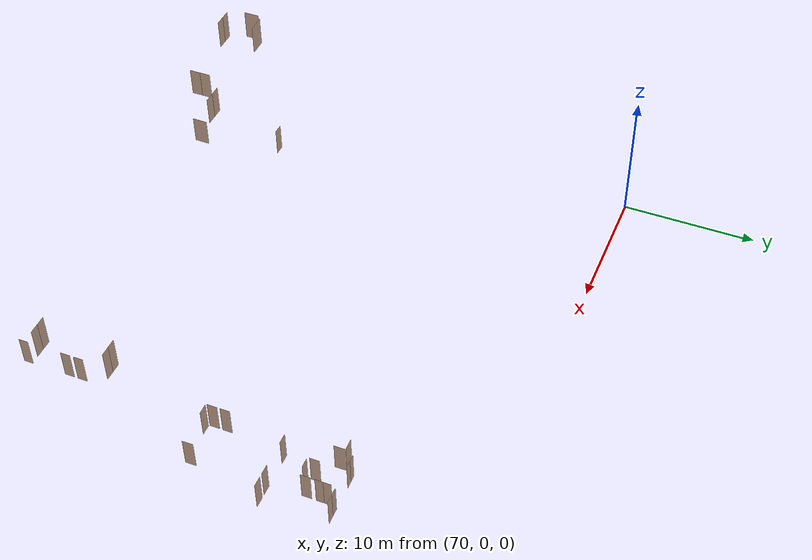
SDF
<sdf version="1.7">
 <world name="sim_world">
  <model name="p54">
   <pose>73.95981970904572 -27.499940742496534 0.0 0 0 3.118508219306576</pose>
   <link name="right">
    <pose>0 0 1.11 0 0 0</pose>
    <visual name="right_visual">
     <geometry><box><size>0.7409111580958373 0.03 2.2</size></box></geometry>
     <material>
      <ambient>0.5 0.25 0 0.6</ambient>
      <diffuse>0.5 0.25 0 0.6</diffuse>
      <pbr><metal><metalness>0.0</metalness></metal></pbr>
     </material>
    </visual>
    <collision name="right_collision">
     <geometry><box><size>0.7409111580958373 0.03 2.2</size></box></geometry>
     <surface><contact><collide_bitmask>0x02</collide_bitmask></contact></surface>
    </collision>
    <inertial>
     <mass>50.0</mass>
     <inertia><ixx>20.17041666666667</ixx><iyy>22.453955600795485</iyy><izz>2.291038934128812</izz></inertia>
    </inertial>
   </link>
   <joint name="right_joint" type="revolute">
    <parent>world</parent>
    <child>right</child>
    <axis><xyz>0 0 1</xyz><limit><lower>0</lower><upper>1.57</upper></limit></axis>
    <pose>0.37545557904791865 0 0 0 0 0</pose>
   </joint>
   <plugin name="register_component" filename="libregister_component.so">
    <component name="Door">
     <v_max_door>0.5</v_max_door>
     <a_max_door>0.3</a_max_door>
     <a_nom_door>0.15</a_nom_door>
     <dx_min_door>0.01</dx_min_door>
     <f_max_door>500.0</f_max_door>
     <ros_interface>true</ros_interface>
     <door name="p54" type="SwingDoor" left_joint_name="empty_joint" right_joint_name="right_joint"/>
    </component>
   </plugin>
  </model>
  <model name="p55">
   <pose>75.33883440490658 -33.7237007792362 0.0 0 0 -1.5903417223014613</pose>
   <link name="right">
    <pose>0 0 1.11 0 0 0</pose>
    <visual name="right_visual">
     <geometry><box><size>1.1747467513981948 0.03 2.2</size></box></geometry>
     <material>
      <ambient>0.5 0.25 0 0.6</ambient>
      <diffuse>0.5 0.25 0 0.6</diffuse>
      <pbr><metal><metalness>0.0</metalness></metal></pbr>
     </material>
    </visual>
    <collision name="right_collision">
     <geometry><box><size>1.1747467513981948 0.03 2.2</size></box></geometry>
     <surface><contact><collide_bitmask>0x02</collide_bitmask></contact></surface>
    </collision>
    <inertial>
     <mass>50.0</mass>
     <inertia><ixx>20.17041666666667</ixx><iyy>25.91679137466922</iyy><izz>5.753874708002551</izz></inertia>
    </inertial>
   </link>
   <joint name="right_joint" type="revolute">
    <parent>world</parent>
    <child>right</child>
    <axis><xyz>0 0 -1</xyz><limit><lower>0</lower><upper>1.57</upper></limit></axis>
    <pose>0.5923733756990974 0 0 0 0 0</pose>
   </joint>
   <plugin name="register_component" filename="libregister_component.so">
    <component name="Door">
     <v_max_door>0.5</v_max_door>
     <a_max_door>0.3</a_max_door>
     <a_nom_door>0.15</a_nom_door>
     <dx_min_door>0.01</dx_min_door>
     <f_max_door>500.0</f_max_door>
     <ros_interface>true</ros_interface>
     <door name="p55" type="SwingDoor" left_joint_name="empty_joint" right_joint_name="right_joint"/>
    </component>
   </plugin>
  </model>
  <model name="p100">
   <pose>100.49508903439906 -9.745955675387403 0.0 0 0 0.011124171743095226</pose>
   <link name="right">
    <pose>0 0 1.11 0 0 0</pose>
    <visual name="right_visual">
     <geometry><box><size>0.7570914016547481 0.03 2.2</size></box></geometry>
     <material>
      <ambient>0.5 0.25 0 0.6</ambient>
      <diffuse>0.5 0.25 0 0.6</diffuse>
      <pbr><metal><metalness>0.0</metalness></metal></pbr>
     </material>
    </visual>
    <collision name="right_collision">
     <geometry><box><size>0.7570914016547481 0.03 2.2</size></box></geometry>
     <surface><contact><collide_bitmask>0x02</collide_bitmask></contact></surface>
    </collision>
    <inertial>
     <mass>50.0</mass>
     <inertia><ixx>20.17041666666667</ixx><iyy>22.554947460248133</iyy><izz>2.3920307935814633</izz></inertia>
    </inertial>
   </link>
   <joint name="right_joint" type="revolute">
    <parent>world</parent>
    <child>right</child>
    <axis><xyz>0 0 -1</xyz><limit><lower>0</lower><upper>1.57</upper></limit></axis>
    <pose>0.38354570082737405 0 0 0 0 0</pose>
   </joint>
   <plugin name="register_component" filename="libregister_component.so">
    <component name="Door">
     <v_max_door>0.5</v_max_door>
     <a_max_door>0.3</a_max_door>
     <a_nom_door>0.15</a_nom_door>
     <dx_min_door>0.01</dx_min_door>
     <f_max_door>500.0</f_max_door>
     <ros_interface>true</ros_interface>
     <door name="p100" type="SwingDoor" left_joint_name="empty_joint" right_joint_name="right_joint"/>
    </component>
   </plugin>
  </model>
  <model name="p101">
   <pose>100.94895336434482 -10.160798939290693 0.0 0 0 1.5789192547537345</pose>
   <link name="right">
    <pose>0 0 1.11 0 0 0</pose>
    <visual name="right_visual">
     <geometry><box><size>0.8189138980404819 0.03 2.2</size></box></geometry>
     <material>
      <ambient>0.5 0.25 0 0.6</ambient>
      <diffuse>0.5 0.25 0 0.6</diffuse>
      <pbr><metal><metalness>0.0</metalness></metal></pbr>
     </material>
    </visual>
    <collision name="right_collision">
     <geometry><box><size>0.8189138980404819 0.03 2.2</size></box></geometry>
     <surface><contact><collide_bitmask>0x02</collide_bitmask></contact></surface>
    </collision>
    <inertial>
     <mass>50.0</mass>
     <inertia><ixx>20.17041666666667</ixx><iyy>22.96091655168274</iyy><izz>2.79799988501607</izz></inertia>
    </inertial>
   </link>
   <joint name="right_joint" type="revolute">
    <parent>world</parent>
    <child>right</child>
    <axis><xyz>0 0 -1</xyz><limit><lower>0</lower><upper>1.57</upper></limit></axis>
    <pose>0.41445694902024094 0 0 0 0 0</pose>
   </joint>
   <plugin name="register_component" filename="libregister_component.so">
    <component name="Door">
     <v_max_door>0.5</v_max_door>
     <a_max_door>0.3</a_max_door>
     <a_nom_door>0.15</a_nom_door>
     <dx_min_door>0.01</dx_min_door>
     <f_max_door>500.0</f_max_door>
     <ros_interface>true</ros_interface>
     <door name="p101" type="SwingDoor" left_joint_name="empty_joint" right_joint_name="right_joint"/>
    </component>
   </plugin>
  </model>
  <model name="p102">
   <pose>101.70223104500613 -9.121474178542865 0.0 0 0 0.0168038520198686</pose>
   <link name="right">
    <pose>0.2535838443429033 0 1.11 0 0 0</pose>
    <visual name="right_visual">
     <geometry><box><size>0.49716768868580663 0.03 2.2</size></box></geometry>
     <material>
      <ambient>0.5 0.25 0 0.6</ambient>
      <diffuse>0.5 0.25 0 0.6</diffuse>
      <pbr><metal><metalness>0.0</metalness></metal></pbr>
     </material>
    </visual>
    <collision name="right_collision">
     <geometry><box><size>0.49716768868580663 0.03 2.2</size></box></geometry>
     <surface><contact><collide_bitmask>0x02</collide_bitmask></contact></surface>
    </collision>
    <inertial>
     <mass>50.0</mass>
     <inertia><ixx>20.17041666666667</ixx><iyy>21.196565461138285</iyy><izz>1.0336487944716133</izz></inertia>
    </inertial>
   </link>
   <joint name="right_joint" type="revolute">
    <parent>world</parent>
    <child>right</child>
    <axis><xyz>0 0 -1</xyz><limit><lower>0</lower><upper>1.57</upper></limit></axis>
    <pose>0.2535838443429033 0 0 0 0 0</pose>
   </joint>
   <link name="left">
    <pose>-0.2535838443429033 0 1.11 0 0 0</pose>
    <visual name="left_visual">
     <geometry><box><size>0.49716768868580663 0.03 2.2</size></box></geometry>
     <material>
      <ambient>0.5 0.25 0 0.6</ambient>
      <diffuse>0.5 0.25 0 0.6</diffuse>
      <pbr><metal><metalness>0.0</metalness></metal></pbr>
     </material>
    </visual>
    <collision name="left_collision">
     <geometry><box><size>0.49716768868580663 0.03 2.2</size></box></geometry>
     <surface><contact><collide_bitmask>0x02</collide_bitmask></contact></surface>
    </collision>
    <inertial>
     <mass>50.0</mass>
     <inertia><ixx>20.17041666666667</ixx><iyy>21.196565461138285</iyy><izz>1.0336487944716133</izz></inertia>
    </inertial>
   </link>
   <joint name="left_joint" type="revolute">
    <parent>world</parent>
    <child>left</child>
    <axis><xyz>0 0 -1</xyz><limit><lower>-1.57</lower><upper>0</upper></limit></axis>
    <pose>-0.2535838443429033 0 0 0 0 0</pose>
   </joint>
   <plugin name="register_component" filename="libregister_component.so">
    <component name="Door">
     <v_max_door>0.5</v_max_door>
     <a_max_door>0.3</a_max_door>
     <a_nom_door>0.15</a_nom_door>
     <dx_min_door>0.01</dx_min_door>
     <f_max_door>500.0</f_max_door>
     <ros_interface>true</ros_interface>
     <door name="p102" type="DoubleSwingDoor" left_joint_name="left_joint" right_joint_name="right_joint"/>
    </component>
   </plugin>
  </model>
  <model name="p103">
   <pose>103.82634588604789 -10.032236081893878 0.0 0 0 1.5759541186434451</pose>
   <link name="right">
    <pose>0.2865064330751496 0 1.11 0 0 0</pose>
    <visual name="right_visual">
     <geometry><box><size>0.5630128661502992 0.03 2.2</size></box></geometry>
     <material>
      <ambient>0.5 0.25 0 0.6</ambient>
      <diffuse>0.5 0.25 0 0.6</diffuse>
      <pbr><metal><metalness>0.0</metalness></metal></pbr>
     </material>
    </visual>
    <collision name="right_collision">
     <geometry><box><size>0.5630128661502992 0.03 2.2</size></box></geometry>
     <surface><contact><collide_bitmask>0x02</collide_bitmask></contact></surface>
    </collision>
    <inertial>
     <mass>50.0</mass>
     <inertia><ixx>20.17041666666667</ixx><iyy>21.487431197711565</iyy><izz>1.324514531044895</izz></inertia>
    </inertial>
   </link>
   <joint name="right_joint" type="revolute">
    <parent>world</parent>
    <child>right</child>
    <axis><xyz>0 0 -1</xyz><limit><lower>0</lower><upper>1.57</upper></limit></axis>
    <pose>0.2865064330751496 0 0 0 0 0</pose>
   </joint>
   <link name="left">
    <pose>-0.2865064330751496 0 1.11 0 0 0</pose>
    <visual name="left_visual">
     <geometry><box><size>0.5630128661502992 0.03 2.2</size></box></geometry>
     <material>
      <ambient>0.5 0.25 0 0.6</ambient>
      <diffuse>0.5 0.25 0 0.6</diffuse>
      <pbr><metal><metalness>0.0</metalness></metal></pbr>
     </material>
    </visual>
    <collision name="left_collision">
     <geometry><box><size>0.5630128661502992 0.03 2.2</size></box></geometry>
     <surface><contact><collide_bitmask>0x02</collide_bitmask></contact></surface>
    </collision>
    <inertial>
     <mass>50.0</mass>
     <inertia><ixx>20.17041666666667</ixx><iyy>21.487431197711565</iyy><izz>1.324514531044895</izz></inertia>
    </inertial>
   </link>
   <joint name="left_joint" type="revolute">
    <parent>world</parent>
    <child>left</child>
    <axis><xyz>0 0 -1</xyz><limit><lower>-1.57</lower><upper>0</upper></limit></axis>
    <pose>-0.2865064330751496 0 0 0 0 0</pose>
   </joint>
   <plugin name="register_component" filename="libregister_component.so">
    <component name="Door">
     <v_max_door>0.5</v_max_door>
     <a_max_door>0.3</a_max_door>
     <a_nom_door>0.15</a_nom_door>
     <dx_min_door>0.01</dx_min_door>
     <f_max_door>500.0</f_max_door>
     <ros_interface>true</ros_interface>
     <door name="p103" type="DoubleSwingDoor" left_joint_name="left_joint" right_joint_name="right_joint"/>
    </component>
   </plugin>
  </model>
  <model name="p104">
   <pose>104.55446875648137 -9.109152321412704 0.0 0 0 0.006483198581147961</pose>
   <link name="right">
    <pose>0.2930585869539485 0 1.11 0 0 0</pose>
    <visual name="right_visual">
     <geometry><box><size>0.576117173907897 0.03 2.2</size></box></geometry>
     <material>
      <ambient>0.5 0.25 0 0.6</ambient>
      <diffuse>0.5 0.25 0 0.6</diffuse>
      <pbr><metal><metalness>0.0</metalness></metal></pbr>
     </material>
    </visual>
    <collision name="right_collision">
     <geometry><box><size>0.576117173907897 0.03 2.2</size></box></geometry>
     <surface><contact><collide_bitmask>0x02</collide_bitmask></contact></surface>
    </collision>
    <inertial>
     <mass>50.0</mass>
     <inertia><ixx>20.17041666666667</ixx><iyy>21.549629158631763</iyy><izz>1.3867124919650917</izz></inertia>
    </inertial>
   </link>
   <joint name="right_joint" type="revolute">
    <parent>world</parent>
    <child>right</child>
    <axis><xyz>0 0 -1</xyz><limit><lower>0</lower><upper>1.57</upper></limit></axis>
    <pose>0.2930585869539485 0 0 0 0 0</pose>
   </joint>
   <link name="left">
    <pose>-0.2930585869539485 0 1.11 0 0 0</pose>
    <visual name="left_visual">
     <geometry><box><size>0.576117173907897 0.03 2.2</size></box></geometry>
     <material>
      <ambient>0.5 0.25 0 0.6</ambient>
      <diffuse>0.5 0.25 0 0.6</diffuse>
      <pbr><metal><metalness>0.0</metalness></metal></pbr>
     </material>
    </visual>
    <collision name="left_collision">
     <geometry><box><size>0.576117173907897 0.03 2.2</size></box></geometry>
     <surface><contact><collide_bitmask>0x02</collide_bitmask></contact></surface>
    </collision>
    <inertial>
     <mass>50.0</mass>
     <inertia><ixx>20.17041666666667</ixx><iyy>21.549629158631763</iyy><izz>1.3867124919650917</izz></inertia>
    </inertial>
   </link>
   <joint name="left_joint" type="revolute">
    <parent>world</parent>
    <child>left</child>
    <axis><xyz>0 0 -1</xyz><limit><lower>-1.57</lower><upper>0</upper></limit></axis>
    <pose>-0.2930585869539485 0 0 0 0 0</pose>
   </joint>
   <plugin name="register_component" filename="libregister_component.so">
    <component name="Door">
     <v_max_door>0.5</v_max_door>
     <a_max_door>0.3</a_max_door>
     <a_nom_door>0.15</a_nom_door>
     <dx_min_door>0.01</dx_min_door>
     <f_max_door>500.0</f_max_door>
     <ros_interface>true</ros_interface>
     <door name="p104" type="DoubleSwingDoor" left_joint_name="left_joint" right_joint_name="right_joint"/>
    </component>
   </plugin>
  </model>
  <model name="p106">
   <pose>102.42714289946971 -11.25109996740838 0.0 0 0 1.5617335996564203</pose>
   <link name="right">
    <pose>0 0 1.11 0 0 0</pose>
    <visual name="right_visual">
     <geometry><box><size>0.7059859670947204 0.03 2.2</size></box></geometry>
     <material>
      <ambient>0.5 0.25 0 0.6</ambient>
      <diffuse>0.5 0.25 0 0.6</diffuse>
      <pbr><metal><metalness>0.0</metalness></metal></pbr>
     </material>
    </visual>
    <collision name="right_collision">
     <geometry><box><size>0.7059859670947204 0.03 2.2</size></box></geometry>
     <surface><contact><collide_bitmask>0x02</collide_bitmask></contact></surface>
    </collision>
    <inertial>
     <mass>50.0</mass>
     <inertia><ixx>20.17041666666667</ixx><iyy>22.243400773894454</iyy><izz>2.080484107227782</izz></inertia>
    </inertial>
   </link>
   <joint name="right_joint" type="revolute">
    <parent>world</parent>
    <child>right</child>
    <axis><xyz>0 0 -1</xyz><limit><lower>0</lower><upper>1.57</upper></limit></axis>
    <pose>0.3579929835473602 0 0 0 0 0</pose>
   </joint>
   <plugin name="register_component" filename="libregister_component.so">
    <component name="Door">
     <v_max_door>0.5</v_max_door>
     <a_max_door>0.3</a_max_door>
     <a_nom_door>0.15</a_nom_door>
     <dx_min_door>0.01</dx_min_door>
     <f_max_door>500.0</f_max_door>
     <ros_interface>true</ros_interface>
     <door name="p106" type="SwingDoor" left_joint_name="empty_joint" right_joint_name="right_joint"/>
    </component>
   </plugin>
  </model>
  <model name="p107">
   <pose>103.82629033213837 -11.261477437705558 0.0 0 0 1.5624175846166573</pose>
   <link name="right">
    <pose>0 0 1.11 0 0 0</pose>
    <visual name="right_visual">
     <geometry><box><size>0.7087372668855829 0.03 2.2</size></box></geometry>
     <material>
      <ambient>0.5 0.25 0 0.6</ambient>
      <diffuse>0.5 0.25 0 0.6</diffuse>
      <pbr><metal><metalness>0.0</metalness></metal></pbr>
     </material>
    </visual>
    <collision name="right_collision">
     <geometry><box><size>0.7087372668855829 0.03 2.2</size></box></geometry>
     <surface><contact><collide_bitmask>0x02</collide_bitmask></contact></surface>
    </collision>
    <inertial>
     <mass>50.0</mass>
     <inertia><ixx>20.17041666666667</ixx><iyy>22.259618806135197</iyy><izz>2.0967021394685252</izz></inertia>
    </inertial>
   </link>
   <joint name="right_joint" type="revolute">
    <parent>world</parent>
    <child>right</child>
    <axis><xyz>0 0 -1</xyz><limit><lower>0</lower><upper>1.57</upper></limit></axis>
    <pose>0.35936863344279146 0 0 0 0 0</pose>
   </joint>
   <plugin name="register_component" filename="libregister_component.so">
    <component name="Door">
     <v_max_door>0.5</v_max_door>
     <a_max_door>0.3</a_max_door>
     <a_nom_door>0.15</a_nom_door>
     <dx_min_door>0.01</dx_min_door>
     <f_max_door>500.0</f_max_door>
     <ros_interface>true</ros_interface>
     <door name="p107" type="SwingDoor" left_joint_name="empty_joint" right_joint_name="right_joint"/>
    </component>
   </plugin>
  </model>
  <model name="p108">
   <pose>101.66397662291496 -13.890255103552496 0.0 0 0 0.01372252654388742</pose>
   <link name="right">
    <pose>0 0 1.11 0 0 0</pose>
    <visual name="right_visual">
     <geometry><box><size>0.7154912571668173 0.03 2.2</size></box></geometry>
     <material>
      <ambient>0.5 0.25 0 0.6</ambient>
      <diffuse>0.5 0.25 0 0.6</diffuse>
      <pbr><metal><metalness>0.0</metalness></metal></pbr>
     </material>
    </visual>
    <collision name="right_collision">
     <geometry><box><size>0.7154912571668173 0.03 2.2</size></box></geometry>
     <surface><contact><collide_bitmask>0x02</collide_bitmask></contact></surface>
    </collision>
    <inertial>
     <mass>50.0</mass>
     <inertia><ixx>20.17041666666667</ixx><iyy>22.29969891284231</iyy><izz>2.136782246175636</izz></inertia>
    </inertial>
   </link>
   <joint name="right_joint" type="revolute">
    <parent>world</parent>
    <child>right</child>
    <axis><xyz>0 0 -1</xyz><limit><lower>0</lower><upper>1.57</upper></limit></axis>
    <pose>0.36274562858340864 0 0 0 0 0</pose>
   </joint>
   <plugin name="register_component" filename="libregister_component.so">
    <component name="Door">
     <v_max_door>0.5</v_max_door>
     <a_max_door>0.3</a_max_door>
     <a_nom_door>0.15</a_nom_door>
     <dx_min_door>0.01</dx_min_door>
     <f_max_door>500.0</f_max_door>
     <ros_interface>true</ros_interface>
     <door name="p108" type="SwingDoor" left_joint_name="empty_joint" right_joint_name="right_joint"/>
    </component>
   </plugin>
  </model>
  <model name="p109">
   <pose>102.90293991289154 -11.747607478296947 0.0 0 0 -3.1355767052412236</pose>
   <link name="right">
    <pose>0 0 1.11 0 0 0</pose>
    <visual name="right_visual">
     <geometry><box><size>0.6696588279365855 0.03 2.2</size></box></geometry>
     <material>
      <ambient>0.5 0.25 0 0.6</ambient>
      <diffuse>0.5 0.25 0 0.6</diffuse>
      <pbr><metal><metalness>0.0</metalness></metal></pbr>
     </material>
    </visual>
    <collision name="right_collision">
     <geometry><box><size>0.6696588279365855 0.03 2.2</size></box></geometry>
     <surface><contact><collide_bitmask>0x02</collide_bitmask></contact></surface>
    </collision>
    <inertial>
     <mass>50.0</mass>
     <inertia><ixx>20.17041666666667</ixx><iyy>22.03517894097251</iyy><izz>1.8722622743058392</izz></inertia>
    </inertial>
   </link>
   <joint name="right_joint" type="revolute">
    <parent>world</parent>
    <child>right</child>
    <axis><xyz>0 0 -1</xyz><limit><lower>0</lower><upper>1.57</upper></limit></axis>
    <pose>0.33982941396829275 0 0 0 0 0</pose>
   </joint>
   <plugin name="register_component" filename="libregister_component.so">
    <component name="Door">
     <v_max_door>0.5</v_max_door>
     <a_max_door>0.3</a_max_door>
     <a_nom_door>0.15</a_nom_door>
     <dx_min_door>0.01</dx_min_door>
     <f_max_door>500.0</f_max_door>
     <ros_interface>true</ros_interface>
     <door name="p109" type="SwingDoor" left_joint_name="empty_joint" right_joint_name="right_joint"/>
    </component>
   </plugin>
  </model>
  <model name="p110">
   <pose>104.32402002903626 -13.885221919350547 0.0 0 0 -3.141440724086253</pose>
   <link name="right">
    <pose>0 0 1.11 0 0 0</pose>
    <visual name="right_visual">
     <geometry><box><size>0.7213116732798441 0.03 2.2</size></box></geometry>
     <material>
      <ambient>0.5 0.25 0 0.6</ambient>
      <diffuse>0.5 0.25 0 0.6</diffuse>
      <pbr><metal><metalness>0.0</metalness></metal></pbr>
     </material>
    </visual>
    <collision name="right_collision">
     <geometry><box><size>0.7213116732798441 0.03 2.2</size></box></geometry>
     <surface><contact><collide_bitmask>0x02</collide_bitmask></contact></surface>
    </collision>
    <inertial>
     <mass>50.0</mass>
     <inertia><ixx>20.17041666666667</ixx><iyy>22.33454387504071</iyy><izz>2.171627208374036</izz></inertia>
    </inertial>
   </link>
   <joint name="right_joint" type="revolute">
    <parent>world</parent>
    <child>right</child>
    <axis><xyz>0 0 1</xyz><limit><lower>0</lower><upper>1.57</upper></limit></axis>
    <pose>0.36565583663992207 0 0 0 0 0</pose>
   </joint>
   <plugin name="register_component" filename="libregister_component.so">
    <component name="Door">
     <v_max_door>0.5</v_max_door>
     <a_max_door>0.3</a_max_door>
     <a_nom_door>0.15</a_nom_door>
     <dx_min_door>0.01</dx_min_door>
     <f_max_door>500.0</f_max_door>
     <ros_interface>true</ros_interface>
     <door name="p110" type="SwingDoor" left_joint_name="empty_joint" right_joint_name="right_joint"/>
    </component>
   </plugin>
  </model>
  <model name="p111">
   <pose>105.32383484933786 -13.885999674083742 0.0 0 0 3.1393514429029556</pose>
   <link name="right">
    <pose>0 0 1.11 0 0 0</pose>
    <visual name="right_visual">
     <geometry><box><size>0.733624278808832 0.03 2.2</size></box></geometry>
     <material>
      <ambient>0.5 0.25 0 0.6</ambient>
      <diffuse>0.5 0.25 0 0.6</diffuse>
      <pbr><metal><metalness>0.0</metalness></metal></pbr>
     </material>
    </visual>
    <collision name="right_collision">
     <geometry><box><size>0.733624278808832 0.03 2.2</size></box></geometry>
     <surface><contact><collide_bitmask>0x02</collide_bitmask></contact></surface>
    </collision>
    <inertial>
     <mass>50.0</mass>
     <inertia><ixx>20.17041666666667</ixx><iyy>22.409185760240753</iyy><izz>2.2462690935740786</izz></inertia>
    </inertial>
   </link>
   <joint name="right_joint" type="revolute">
    <parent>world</parent>
    <child>right</child>
    <axis><xyz>0 0 -1</xyz><limit><lower>0</lower><upper>1.57</upper></limit></axis>
    <pose>0.371812139404416 0 0 0 0 0</pose>
   </joint>
   <plugin name="register_component" filename="libregister_component.so">
    <component name="Door">
     <v_max_door>0.5</v_max_door>
     <a_max_door>0.3</a_max_door>
     <a_nom_door>0.15</a_nom_door>
     <dx_min_door>0.01</dx_min_door>
     <f_max_door>500.0</f_max_door>
     <ros_interface>true</ros_interface>
     <door name="p111" type="SwingDoor" left_joint_name="empty_joint" right_joint_name="right_joint"/>
    </component>
   </plugin>
  </model>
  <model name="p122">
   <pose>100.95231993126136 -18.41004340612131 0.0 0 0 -1.5707963267948966</pose>
   <link name="right">
    <pose>0 0 1.11 0 0 0</pose>
    <visual name="right_visual">
     <geometry><box><size>0.7147118603893234 0.03 2.2</size></box></geometry>
     <material>
      <ambient>0.5 0.25 0 0.6</ambient>
      <diffuse>0.5 0.25 0 0.6</diffuse>
      <pbr><metal><metalness>0.0</metalness></metal></pbr>
     </material>
    </visual>
    <collision name="right_collision">
     <geometry><box><size>0.7147118603893234 0.03 2.2</size></box></geometry>
     <surface><contact><collide_bitmask>0x02</collide_bitmask></contact></surface>
    </collision>
    <inertial>
     <mass>50.0</mass>
     <inertia><ixx>20.17041666666667</ixx><iyy>22.295054347421537</iyy><izz>2.1321376807548655</izz></inertia>
    </inertial>
   </link>
   <joint name="right_joint" type="revolute">
    <parent>world</parent>
    <child>right</child>
    <axis><xyz>0 0 1</xyz><limit><lower>0</lower><upper>1.57</upper></limit></axis>
    <pose>0.3623559301946617 0 0 0 0 0</pose>
   </joint>
   <plugin name="register_component" filename="libregister_component.so">
    <component name="Door">
     <v_max_door>0.5</v_max_door>
     <a_max_door>0.3</a_max_door>
     <a_nom_door>0.15</a_nom_door>
     <dx_min_door>0.01</dx_min_door>
     <f_max_door>500.0</f_max_door>
     <ros_interface>true</ros_interface>
     <door name="p122" type="SwingDoor" left_joint_name="empty_joint" right_joint_name="right_joint"/>
    </component>
   </plugin>
  </model>
  <model name="p123">
   <pose>100.95231993126136 -19.353482119048337 0.0 0 0 1.5707963267948966</pose>
   <link name="right">
    <pose>0 0 1.11 0 0 0</pose>
    <visual name="right_visual">
     <geometry><box><size>0.7271114929928026 0.03 2.2</size></box></geometry>
     <material>
      <ambient>0.5 0.25 0 0.6</ambient>
      <diffuse>0.5 0.25 0 0.6</diffuse>
      <pbr><metal><metalness>0.0</metalness></metal></pbr>
     </material>
    </visual>
    <collision name="right_collision">
     <geometry><box><size>0.7271114929928026 0.03 2.2</size></box></geometry>
     <surface><contact><collide_bitmask>0x02</collide_bitmask></contact></surface>
    </collision>
    <inertial>
     <mass>50.0</mass>
     <inertia><ixx>20.17041666666667</ixx><iyy>22.3695463468426</iyy><izz>2.206629680175927</izz></inertia>
    </inertial>
   </link>
   <joint name="right_joint" type="revolute">
    <parent>world</parent>
    <child>right</child>
    <axis><xyz>0 0 -1</xyz><limit><lower>0</lower><upper>1.57</upper></limit></axis>
    <pose>0.3685557464964013 0 0 0 0 0</pose>
   </joint>
   <plugin name="register_component" filename="libregister_component.so">
    <component name="Door">
     <v_max_door>0.5</v_max_door>
     <a_max_door>0.3</a_max_door>
     <a_nom_door>0.15</a_nom_door>
     <dx_min_door>0.01</dx_min_door>
     <f_max_door>500.0</f_max_door>
     <ros_interface>true</ros_interface>
     <door name="p123" type="SwingDoor" left_joint_name="empty_joint" right_joint_name="right_joint"/>
    </component>
   </plugin>
  </model>
  <model name="p124">
   <pose>104.25825531095383 -19.398491896536413 0.0 0 0 1.5816312061780085</pose>
   <link name="right">
    <pose>0 0 1.11 0 0 0</pose>
    <visual name="right_visual">
     <geometry><box><size>0.7796229534240273 0.03 2.2</size></box></geometry>
     <material>
      <ambient>0.5 0.25 0 0.6</ambient>
      <diffuse>0.5 0.25 0 0.6</diffuse>
      <pbr><metal><metalness>0.0</metalness></metal></pbr>
     </material>
    </visual>
    <collision name="right_collision">
     <geometry><box><size>0.7796229534240273 0.03 2.2</size></box></geometry>
     <surface><contact><collide_bitmask>0x02</collide_bitmask></contact></surface>
    </collision>
    <inertial>
     <mass>50.0</mass>
     <inertia><ixx>20.17041666666667</ixx><iyy>22.69921645627335</iyy><izz>2.5362997896066797</izz></inertia>
    </inertial>
   </link>
   <joint name="right_joint" type="revolute">
    <parent>world</parent>
    <child>right</child>
    <axis><xyz>0 0 1</xyz><limit><lower>0</lower><upper>1.57</upper></limit></axis>
    <pose>0.39481147671201366 0 0 0 0 0</pose>
   </joint>
   <plugin name="register_component" filename="libregister_component.so">
    <component name="Door">
     <v_max_door>0.5</v_max_door>
     <a_max_door>0.3</a_max_door>
     <a_nom_door>0.15</a_nom_door>
     <dx_min_door>0.01</dx_min_door>
     <f_max_door>500.0</f_max_door>
     <ros_interface>true</ros_interface>
     <door name="p124" type="SwingDoor" left_joint_name="empty_joint" right_joint_name="right_joint"/>
    </component>
   </plugin>
  </model>
  <model name="p125">
   <pose>101.40870640869906 -19.793280199105226 0.0 0 0 3.141592653589793</pose>
   <link name="right">
    <pose>0 0 1.11 0 0 0</pose>
    <visual name="right_visual">
     <geometry><box><size>0.7264670676424367 0.03 2.2</size></box></geometry>
     <material>
      <ambient>0.5 0.25 0 0.6</ambient>
      <diffuse>0.5 0.25 0 0.6</diffuse>
      <pbr><metal><metalness>0.0</metalness></metal></pbr>
     </material>
    </visual>
    <collision name="right_collision">
     <geometry><box><size>0.7264670676424367 0.03 2.2</size></box></geometry>
     <surface><contact><collide_bitmask>0x02</collide_bitmask></contact></surface>
    </collision>
    <inertial>
     <mass>50.0</mass>
     <inertia><ixx>20.17041666666667</ixx><iyy>22.365643334870843</iyy><izz>2.20272666820417</izz></inertia>
    </inertial>
   </link>
   <joint name="right_joint" type="revolute">
    <parent>world</parent>
    <child>right</child>
    <axis><xyz>0 0 -1</xyz><limit><lower>0</lower><upper>1.57</upper></limit></axis>
    <pose>0.3682335338212184 0 0 0 0 0</pose>
   </joint>
   <plugin name="register_component" filename="libregister_component.so">
    <component name="Door">
     <v_max_door>0.5</v_max_door>
     <a_max_door>0.3</a_max_door>
     <a_nom_door>0.15</a_nom_door>
     <dx_min_door>0.01</dx_min_door>
     <f_max_door>500.0</f_max_door>
     <ros_interface>true</ros_interface>
     <door name="p125" type="SwingDoor" left_joint_name="empty_joint" right_joint_name="right_joint"/>
    </component>
   </plugin>
  </model>
  <model name="p131">
   <pose>100.6576064412907 -29.693164646973443 0.0 0 0 -1.5688829476076613</pose>
   <link name="right">
    <pose>0 0 1.11 0 0 0</pose>
    <visual name="right_visual">
     <geometry><box><size>0.721668549186603 0.03 2.2</size></box></geometry>
     <material>
      <ambient>0.5 0.25 0 0.6</ambient>
      <diffuse>0.5 0.25 0 0.6</diffuse>
      <pbr><metal><metalness>0.0</metalness></metal></pbr>
     </material>
    </visual>
    <collision name="right_collision">
     <geometry><box><size>0.721668549186603 0.03 2.2</size></box></geometry>
     <surface><contact><collide_bitmask>0x02</collide_bitmask></contact></surface>
    </collision>
    <inertial>
     <mass>50.0</mass>
     <inertia><ixx>20.17041666666667</ixx><iyy>22.336689562021242</iyy><izz>2.1737728953545683</izz></inertia>
    </inertial>
   </link>
   <joint name="right_joint" type="revolute">
    <parent>world</parent>
    <child>right</child>
    <axis><xyz>0 0 1</xyz><limit><lower>0</lower><upper>1.57</upper></limit></axis>
    <pose>0.3658342745933015 0 0 0 0 0</pose>
   </joint>
   <plugin name="register_component" filename="libregister_component.so">
    <component name="Door">
     <v_max_door>0.5</v_max_door>
     <a_max_door>0.3</a_max_door>
     <a_nom_door>0.15</a_nom_door>
     <dx_min_door>0.01</dx_min_door>
     <f_max_door>500.0</f_max_door>
     <ros_interface>true</ros_interface>
     <door name="p131" type="SwingDoor" left_joint_name="empty_joint" right_joint_name="right_joint"/>
    </component>
   </plugin>
  </model>
  <model name="p132">
   <pose>100.65830642055057 -30.69901262184826 0.0 0 0 1.5707963267948966</pose>
   <link name="right">
    <pose>0 0 1.11 0 0 0</pose>
    <visual name="right_visual">
     <geometry><box><size>0.7329779858374559 0.03 2.2</size></box></geometry>
     <material>
      <ambient>0.5 0.25 0 0.6</ambient>
      <diffuse>0.5 0.25 0 0.6</diffuse>
      <pbr><metal><metalness>0.0</metalness></metal></pbr>
     </material>
    </visual>
    <collision name="right_collision">
     <geometry><box><size>0.7329779858374559 0.03 2.2</size></box></geometry>
     <surface><contact><collide_bitmask>0x02</collide_bitmask></contact></surface>
    </collision>
    <inertial>
     <mass>50.0</mass>
     <inertia><ixx>20.17041666666667</ixx><iyy>22.40523636550973</iyy><izz>2.2423196988430574</izz></inertia>
    </inertial>
   </link>
   <joint name="right_joint" type="revolute">
    <parent>world</parent>
    <child>right</child>
    <axis><xyz>0 0 -1</xyz><limit><lower>0</lower><upper>1.57</upper></limit></axis>
    <pose>0.37148899291872794 0 0 0 0 0</pose>
   </joint>
   <plugin name="register_component" filename="libregister_component.so">
    <component name="Door">
     <v_max_door>0.5</v_max_door>
     <a_max_door>0.3</a_max_door>
     <a_nom_door>0.15</a_nom_door>
     <dx_min_door>0.01</dx_min_door>
     <f_max_door>500.0</f_max_door>
     <ros_interface>true</ros_interface>
     <door name="p132" type="SwingDoor" left_joint_name="empty_joint" right_joint_name="right_joint"/>
    </component>
   </plugin>
  </model>
  <model name="p133">
   <pose>100.66097300820724 -33.98787072975618 0.0 0 0 -1.5631853996428802</pose>
   <link name="right">
    <pose>0 0 1.11 0 0 0</pose>
    <visual name="right_visual">
     <geometry><box><size>0.690732866781733 0.03 2.2</size></box></geometry>
     <material>
      <ambient>0.5 0.25 0 0.6</ambient>
      <diffuse>0.5 0.25 0 0.6</diffuse>
      <pbr><metal><metalness>0.0</metalness></metal></pbr>
     </material>
    </visual>
    <collision name="right_collision">
     <geometry><box><size>0.690732866781733 0.03 2.2</size></box></geometry>
     <surface><contact><collide_bitmask>0x02</collide_bitmask></contact></surface>
    </collision>
    <inertial>
     <mass>50.0</mass>
     <inertia><ixx>20.17041666666667</ixx><iyy>22.154632888552133</iyy><izz>1.9917162218854636</izz></inertia>
    </inertial>
   </link>
   <joint name="right_joint" type="revolute">
    <parent>world</parent>
    <child>right</child>
    <axis><xyz>0 0 1</xyz><limit><lower>0</lower><upper>1.57</upper></limit></axis>
    <pose>0.3503664333908665 0 0 0 0 0</pose>
   </joint>
   <plugin name="register_component" filename="libregister_component.so">
    <component name="Door">
     <v_max_door>0.5</v_max_door>
     <a_max_door>0.3</a_max_door>
     <a_nom_door>0.15</a_nom_door>
     <dx_min_door>0.01</dx_min_door>
     <f_max_door>500.0</f_max_door>
     <ros_interface>true</ros_interface>
     <door name="p133" type="SwingDoor" left_joint_name="empty_joint" right_joint_name="right_joint"/>
    </component>
   </plugin>
  </model>
  <model name="puerta21">
   <pose>77.35595199132163 -31.043466150284832 5.0 0 0 3.1309275943293895</pose>
   <link name="right">
    <pose>0.41191011725236004 0 1.11 0 0 0</pose>
    <visual name="right_visual">
     <geometry><box><size>0.8138202345047201 0.03 2.2</size></box></geometry>
     <material>
      <ambient>0.5 0.25 0 0.6</ambient>
      <diffuse>0.5 0.25 0 0.6</diffuse>
      <pbr><metal><metalness>0.0</metalness></metal></pbr>
     </material>
    </visual>
    <collision name="right_collision">
     <geometry><box><size>0.8138202345047201 0.03 2.2</size></box></geometry>
     <surface><contact><collide_bitmask>0x02</collide_bitmask></contact></surface>
    </collision>
    <inertial>
     <mass>50.0</mass>
     <inertia><ixx>20.17041666666667</ixx><iyy>22.926264058705495</iyy><izz>2.7633473920388236</izz></inertia>
    </inertial>
   </link>
   <joint name="right_joint" type="revolute">
    <parent>world</parent>
    <child>right</child>
    <axis><xyz>0 0 -1</xyz><limit><lower>0</lower><upper>1.57</upper></limit></axis>
    <pose>0.41191011725236004 0 0 0 0 0</pose>
   </joint>
   <link name="left">
    <pose>-0.41191011725236004 0 1.11 0 0 0</pose>
    <visual name="left_visual">
     <geometry><box><size>0.8138202345047201 0.03 2.2</size></box></geometry>
     <material>
      <ambient>0.5 0.25 0 0.6</ambient>
      <diffuse>0.5 0.25 0 0.6</diffuse>
      <pbr><metal><metalness>0.0</metalness></metal></pbr>
     </material>
    </visual>
    <collision name="left_collision">
     <geometry><box><size>0.8138202345047201 0.03 2.2</size></box></geometry>
     <surface><contact><collide_bitmask>0x02</collide_bitmask></contact></surface>
    </collision>
    <inertial>
     <mass>50.0</mass>
     <inertia><ixx>20.17041666666667</ixx><iyy>22.926264058705495</iyy><izz>2.7633473920388236</izz></inertia>
    </inertial>
   </link>
   <joint name="left_joint" type="revolute">
    <parent>world</parent>
    <child>left</child>
    <axis><xyz>0 0 -1</xyz><limit><lower>-1.57</lower><upper>0</upper></limit></axis>
    <pose>-0.41191011725236004 0 0 0 0 0</pose>
   </joint>
   <plugin name="register_component" filename="libregister_component.so">
    <component name="Door">
     <v_max_door>0.5</v_max_door>
     <a_max_door>0.3</a_max_door>
     <a_nom_door>0.15</a_nom_door>
     <dx_min_door>0.01</dx_min_door>
     <f_max_door>500.0</f_max_door>
     <ros_interface>true</ros_interface>
     <door name="puerta21" type="DoubleSwingDoor" left_joint_name="left_joint" right_joint_name="right_joint"/>
    </component>
   </plugin>
  </model>
  <model name="puerta57">
   <pose>75.3832940666833 -33.12763397759619 5.0 0 0 -1.5712822032152878</pose>
   <link name="right">
    <pose>0.4174033229169569 0 1.11 0 0 0</pose>
    <visual name="right_visual">
     <geometry><box><size>0.8248066458339138 0.03 2.2</size></box></geometry>
     <material>
      <ambient>0.5 0.25 0 0.6</ambient>
      <diffuse>0.5 0.25 0 0.6</diffuse>
      <pbr><metal><metalness>0.0</metalness></metal></pbr>
     </material>
    </visual>
    <collision name="right_collision">
     <geometry><box><size>0.8248066458339138 0.03 2.2</size></box></geometry>
     <surface><contact><collide_bitmask>0x02</collide_bitmask></contact></surface>
    </collision>
    <inertial>
     <mass>50.0</mass>
     <inertia><ixx>20.17041666666667</ixx><iyy>23.001275012549137</iyy><izz>2.838358345882464</izz></inertia>
    </inertial>
   </link>
   <joint name="right_joint" type="revolute">
    <parent>world</parent>
    <child>right</child>
    <axis><xyz>0 0 -1</xyz><limit><lower>0</lower><upper>1.57</upper></limit></axis>
    <pose>0.4174033229169569 0 0 0 0 0</pose>
   </joint>
   <link name="left">
    <pose>-0.4174033229169569 0 1.11 0 0 0</pose>
    <visual name="left_visual">
     <geometry><box><size>0.8248066458339138 0.03 2.2</size></box></geometry>
     <material>
      <ambient>0.5 0.25 0 0.6</ambient>
      <diffuse>0.5 0.25 0 0.6</diffuse>
      <pbr><metal><metalness>0.0</metalness></metal></pbr>
     </material>
    </visual>
    <collision name="left_collision">
     <geometry><box><size>0.8248066458339138 0.03 2.2</size></box></geometry>
     <surface><contact><collide_bitmask>0x02</collide_bitmask></contact></surface>
    </collision>
    <inertial>
     <mass>50.0</mass>
     <inertia><ixx>20.17041666666667</ixx><iyy>23.001275012549137</iyy><izz>2.838358345882464</izz></inertia>
    </inertial>
   </link>
   <joint name="left_joint" type="revolute">
    <parent>world</parent>
    <child>left</child>
    <axis><xyz>0 0 -1</xyz><limit><lower>-1.57</lower><upper>0</upper></limit></axis>
    <pose>-0.4174033229169569 0 0 0 0 0</pose>
   </joint>
   <plugin name="register_component" filename="libregister_component.so">
    <component name="Door">
     <v_max_door>0.5</v_max_door>
     <a_max_door>0.3</a_max_door>
     <a_nom_door>0.15</a_nom_door>
     <dx_min_door>0.01</dx_min_door>
     <f_max_door>500.0</f_max_door>
     <ros_interface>true</ros_interface>
     <door name="puerta57" type="DoubleSwingDoor" left_joint_name="left_joint" right_joint_name="right_joint"/>
    </component>
   </plugin>
  </model>
  <model name="puerta158">
   <pose>106.20046774872104 -27.35689803067389 10.0 0 0 -0.0009756384153271468</pose>
   <link name="right">
    <pose>0.32440340553713914 0 1.11 0 0 0</pose>
    <visual name="right_visual">
     <geometry><box><size>0.6388068110742783 0.03 2.2</size></box></geometry>
     <material>
      <ambient>0.5 0.25 0 0.6</ambient>
      <diffuse>0.5 0.25 0 0.6</diffuse>
      <pbr><metal><metalness>0.0</metalness></metal></pbr>
     </material>
    </visual>
    <collision name="right_collision">
     <geometry><box><size>0.6388068110742783 0.03 2.2</size></box></geometry>
     <surface><contact><collide_bitmask>0x02</collide_bitmask></contact></surface>
    </collision>
    <inertial>
     <mass>50.0</mass>
     <inertia><ixx>20.17041666666667</ixx><iyy>21.866975591145376</iyy><izz>1.704058924478703</izz></inertia>
    </inertial>
   </link>
   <joint name="right_joint" type="revolute">
    <parent>world</parent>
    <child>right</child>
    <axis><xyz>0 0 -1</xyz><limit><lower>0</lower><upper>1.57</upper></limit></axis>
    <pose>0.32440340553713914 0 0 0 0 0</pose>
   </joint>
   <link name="left">
    <pose>-0.32440340553713914 0 1.11 0 0 0</pose>
    <visual name="left_visual">
     <geometry><box><size>0.6388068110742783 0.03 2.2</size></box></geometry>
     <material>
      <ambient>0.5 0.25 0 0.6</ambient>
      <diffuse>0.5 0.25 0 0.6</diffuse>
      <pbr><metal><metalness>0.0</metalness></metal></pbr>
     </material>
    </visual>
    <collision name="left_collision">
     <geometry><box><size>0.6388068110742783 0.03 2.2</size></box></geometry>
     <surface><contact><collide_bitmask>0x02</collide_bitmask></contact></surface>
    </collision>
    <inertial>
     <mass>50.0</mass>
     <inertia><ixx>20.17041666666667</ixx><iyy>21.866975591145376</iyy><izz>1.704058924478703</izz></inertia>
    </inertial>
   </link>
   <joint name="left_joint" type="revolute">
    <parent>world</parent>
    <child>left</child>
    <axis><xyz>0 0 -1</xyz><limit><lower>-1.57</lower><upper>0</upper></limit></axis>
    <pose>-0.32440340553713914 0 0 0 0 0</pose>
   </joint>
   <plugin name="register_component" filename="libregister_component.so">
    <component name="Door">
     <v_max_door>0.5</v_max_door>
     <a_max_door>0.3</a_max_door>
     <a_nom_door>0.15</a_nom_door>
     <dx_min_door>0.01</dx_min_door>
     <f_max_door>500.0</f_max_door>
     <ros_interface>true</ros_interface>
     <door name="puerta158" type="DoubleSwingDoor" left_joint_name="left_joint" right_joint_name="right_joint"/>
    </component>
   </plugin>
  </model>
  <model name="puerta159">
   <pose>106.20617969086464 -22.475736301104277 10.0 0 0 3.135427974331918</pose>
   <link name="right">
    <pose>0.3156418468900732 0 1.11 0 0 0</pose>
    <visual name="right_visual">
     <geometry><box><size>0.6212836937801464 0.03 2.2</size></box></geometry>
     <material>
      <ambient>0.5 0.25 0 0.6</ambient>
      <diffuse>0.5 0.25 0 0.6</diffuse>
      <pbr><metal><metalness>0.0</metalness></metal></pbr>
     </material>
    </visual>
    <collision name="right_collision">
     <geometry><box><size>0.6212836937801464 0.03 2.2</size></box></geometry>
     <surface><contact><collide_bitmask>0x02</collide_bitmask></contact></surface>
    </collision>
    <inertial>
     <mass>50.0</mass>
     <inertia><ixx>20.17041666666667</ixx><iyy>21.774972617321264</iyy><izz>1.6120559506545946</izz></inertia>
    </inertial>
   </link>
   <joint name="right_joint" type="revolute">
    <parent>world</parent>
    <child>right</child>
    <axis><xyz>0 0 -1</xyz><limit><lower>0</lower><upper>1.57</upper></limit></axis>
    <pose>0.3156418468900732 0 0 0 0 0</pose>
   </joint>
   <link name="left">
    <pose>-0.3156418468900732 0 1.11 0 0 0</pose>
    <visual name="left_visual">
     <geometry><box><size>0.6212836937801464 0.03 2.2</size></box></geometry>
     <material>
      <ambient>0.5 0.25 0 0.6</ambient>
      <diffuse>0.5 0.25 0 0.6</diffuse>
      <pbr><metal><metalness>0.0</metalness></metal></pbr>
     </material>
    </visual>
    <collision name="left_collision">
     <geometry><box><size>0.6212836937801464 0.03 2.2</size></box></geometry>
     <surface><contact><collide_bitmask>0x02</collide_bitmask></contact></surface>
    </collision>
    <inertial>
     <mass>50.0</mass>
     <inertia><ixx>20.17041666666667</ixx><iyy>21.774972617321264</iyy><izz>1.6120559506545946</izz></inertia>
    </inertial>
   </link>
   <joint name="left_joint" type="revolute">
    <parent>world</parent>
    <child>left</child>
    <axis><xyz>0 0 -1</xyz><limit><lower>-1.57</lower><upper>0</upper></limit></axis>
    <pose>-0.3156418468900732 0 0 0 0 0</pose>
   </joint>
   <plugin name="register_component" filename="libregister_component.so">
    <component name="Door">
     <v_max_door>0.5</v_max_door>
     <a_max_door>0.3</a_max_door>
     <a_nom_door>0.15</a_nom_door>
     <dx_min_door>0.01</dx_min_door>
     <f_max_door>500.0</f_max_door>
     <ros_interface>true</ros_interface>
     <door name="puerta159" type="DoubleSwingDoor" left_joint_name="left_joint" right_joint_name="right_joint"/>
    </component>
   </plugin>
  </model>
  <model name="puerta201">
   <pose>74.32711679417264 -31.19721855095682 10.0 0 0 0.00015476907770221537</pose>
   <link name="right">
    <pose>0.36606344526049056 0 1.11 0 0 0</pose>
    <visual name="right_visual">
     <geometry><box><size>0.7221268905209811 0.03 2.2</size></box></geometry>
     <material>
      <ambient>0.5 0.25 0 0.6</ambient>
      <diffuse>0.5 0.25 0 0.6</diffuse>
      <pbr><metal><metalness>0.0</metalness></metal></pbr>
     </material>
    </visual>
    <collision name="right_collision">
     <geometry><box><size>0.7221268905209811 0.03 2.2</size></box></geometry>
     <surface><contact><collide_bitmask>0x02</collide_bitmask></contact></surface>
    </collision>
    <inertial>
     <mass>50.0</mass>
     <inertia><ixx>20.17041666666667</ixx><iyy>22.339446858389593</iyy><izz>2.176530191722921</izz></inertia>
    </inertial>
   </link>
   <joint name="right_joint" type="revolute">
    <parent>world</parent>
    <child>right</child>
    <axis><xyz>0 0 -1</xyz><limit><lower>0</lower><upper>1.57</upper></limit></axis>
    <pose>0.36606344526049056 0 0 0 0 0</pose>
   </joint>
   <link name="left">
    <pose>-0.36606344526049056 0 1.11 0 0 0</pose>
    <visual name="left_visual">
     <geometry><box><size>0.7221268905209811 0.03 2.2</size></box></geometry>
     <material>
      <ambient>0.5 0.25 0 0.6</ambient>
      <diffuse>0.5 0.25 0 0.6</diffuse>
      <pbr><metal><metalness>0.0</metalness></metal></pbr>
     </material>
    </visual>
    <collision name="left_collision">
     <geometry><box><size>0.7221268905209811 0.03 2.2</size></box></geometry>
     <surface><contact><collide_bitmask>0x02</collide_bitmask></contact></surface>
    </collision>
    <inertial>
     <mass>50.0</mass>
     <inertia><ixx>20.17041666666667</ixx><iyy>22.339446858389593</iyy><izz>2.176530191722921</izz></inertia>
    </inertial>
   </link>
   <joint name="left_joint" type="revolute">
    <parent>world</parent>
    <child>left</child>
    <axis><xyz>0 0 -1</xyz><limit><lower>-1.57</lower><upper>0</upper></limit></axis>
    <pose>-0.36606344526049056 0 0 0 0 0</pose>
   </joint>
   <plugin name="register_component" filename="libregister_component.so">
    <component name="Door">
     <v_max_door>0.5</v_max_door>
     <a_max_door>0.3</a_max_door>
     <a_nom_door>0.15</a_nom_door>
     <dx_min_door>0.01</dx_min_door>
     <f_max_door>500.0</f_max_door>
     <ros_interface>true</ros_interface>
     <door name="puerta201" type="DoubleSwingDoor" left_joint_name="left_joint" right_joint_name="right_joint"/>
    </component>
   </plugin>
  </model>
  <model name="puerta202">
   <pose>74.07633589637706 -28.55938249906301 10.0 0 0 3.1413932962237463</pose>
   <link name="right">
    <pose>0 0 1.11 0 0 0</pose>
    <visual name="right_visual">
     <geometry><box><size>1.2451858717931035 0.03 2.2</size></box></geometry>
     <material>
      <ambient>0.5 0.25 0 0.6</ambient>
      <diffuse>0.5 0.25 0 0.6</diffuse>
      <pbr><metal><metalness>0.0</metalness></metal></pbr>
     </material>
    </visual>
    <collision name="right_collision">
     <geometry><box><size>1.2451858717931035 0.03 2.2</size></box></geometry>
     <surface><contact><collide_bitmask>0x02</collide_bitmask></contact></surface>
    </collision>
    <inertial>
     <mass>50.0</mass>
     <inertia><ixx>20.17041666666667</ixx><iyy>26.62703273047147</iyy><izz>6.464116063804797</izz></inertia>
    </inertial>
   </link>
   <joint name="right_joint" type="revolute">
    <parent>world</parent>
    <child>right</child>
    <axis><xyz>0 0 1</xyz><limit><lower>0</lower><upper>1.57</upper></limit></axis>
    <pose>0.6275929358965517 0 0 0 0 0</pose>
   </joint>
   <plugin name="register_component" filename="libregister_component.so">
    <component name="Door">
     <v_max_door>0.5</v_max_door>
     <a_max_door>0.3</a_max_door>
     <a_nom_door>0.15</a_nom_door>
     <dx_min_door>0.01</dx_min_door>
     <f_max_door>500.0</f_max_door>
     <ros_interface>true</ros_interface>
     <door name="puerta202" type="SwingDoor" left_joint_name="empty_joint" right_joint_name="right_joint"/>
    </component>
   </plugin>
  </model>
  <model name="puerta203">
   <pose>73.12851314954557 -29.38938932130677 10.0 0 0 1.5605486764398104</pose>
   <link name="right">
    <pose>0 0 1.11 0 0 0</pose>
    <visual name="right_visual">
     <geometry><box><size>1.1415919822626148 0.03 2.2</size></box></geometry>
     <material>
      <ambient>0.5 0.25 0 0.6</ambient>
      <diffuse>0.5 0.25 0 0.6</diffuse>
      <pbr><metal><metalness>0.0</metalness></metal></pbr>
     </material>
    </visual>
    <collision name="right_collision">
     <geometry><box><size>1.1415919822626148 0.03 2.2</size></box></geometry>
     <surface><contact><collide_bitmask>0x02</collide_bitmask></contact></surface>
    </collision>
    <inertial>
     <mass>50.0</mass>
     <inertia><ixx>20.17041666666667</ixx><iyy>25.596801058192867</iyy><izz>5.433884391526193</izz></inertia>
    </inertial>
   </link>
   <joint name="right_joint" type="revolute">
    <parent>world</parent>
    <child>right</child>
    <axis><xyz>0 0 1</xyz><limit><lower>0</lower><upper>1.57</upper></limit></axis>
    <pose>0.5757959911313074 0 0 0 0 0</pose>
   </joint>
   <plugin name="register_component" filename="libregister_component.so">
    <component name="Door">
     <v_max_door>0.5</v_max_door>
     <a_max_door>0.3</a_max_door>
     <a_nom_door>0.15</a_nom_door>
     <dx_min_door>0.01</dx_min_door>
     <f_max_door>500.0</f_max_door>
     <ros_interface>true</ros_interface>
     <door name="puerta203" type="SwingDoor" left_joint_name="empty_joint" right_joint_name="right_joint"/>
    </component>
   </plugin>
  </model>
 </world>
</sdf>
